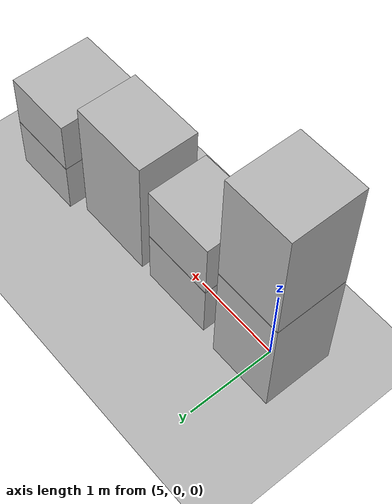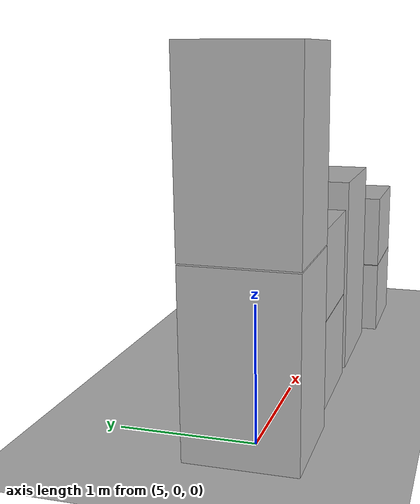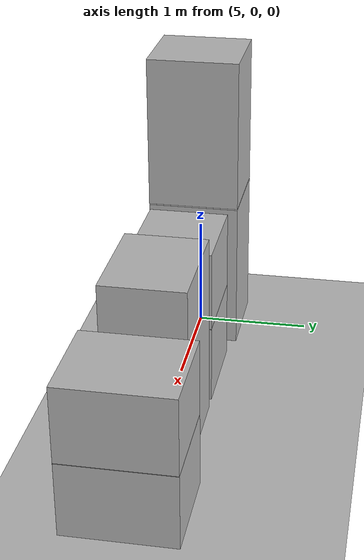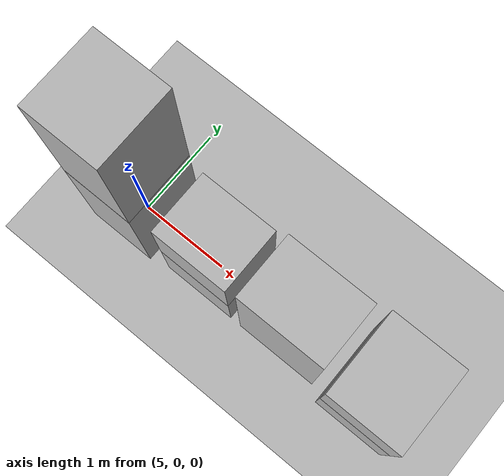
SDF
<sdf version="1.5">
 <world name="default">
  <model name="ground_plane">
   <static>true</static>
   <link name="link">
    <collision name="collision">
     <geometry><plane><normal>0 0 1</normal><size>250 250</size></plane></geometry>
     <surface><friction><ode><mu>1</mu><mu2>1</mu2></ode></friction></surface>
    </collision>
    <visual name="grass">
     <cast_shadows>false</cast_shadows>
     <geometry><mesh><uri>file://grass_plane/meshes/grass_plane.dae</uri></mesh></geometry>
    </visual>
   </link>
  </model>
  <model name="Cardboard_box_5">
   <link name="link_0">
    <pose>5 0 0 0 0 0</pose>
    <inertial>
     <mass>1</mass>
     <inertia>
      <ixx>0.166667</ixx>
      <ixy>0</ixy>
      <ixz>0</ixz>
      <iyy>0.166667</iyy>
      <iyz>0</iyz>
      <izz>0.166667</izz>
     </inertia>
    </inertial>
    <collision name="collision">
     <geometry>
      <mesh>
       <uri>model://Cardboard_box/meshes/cardboard_box.dae</uri>
       <scale>1.9122216337 2.01660778259 3.3676220587</scale>
      </mesh>
     </geometry>
    </collision>
    <visual name="visual">
     <geometry>
      <mesh>
       <uri>model://Cardboard_box/meshes/cardboard_box.dae</uri>
       <scale>1.9122216337 2.01660778259 3.3676220587</scale>
      </mesh>
     </geometry>
    </visual>
   </link>
   <static>1</static>
  </model>
  <model name="Cardboard_box_top_5">
   <link name="link_0">
    <pose>5 0 1.34704882348 0 0 0</pose>
    <inertial>
     <mass>1</mass>
     <inertia>
      <ixx>0.166667</ixx>
      <ixy>0</ixy>
      <ixz>0</ixz>
      <iyy>0.166667</iyy>
      <iyz>0</iyz>
      <izz>0.166667</izz>
     </inertia>
    </inertial>
    <collision name="collision">
     <geometry>
      <mesh>
       <uri>model://Cardboard_box/meshes/cardboard_box.dae</uri>
       <scale>1.9122216337 2.01660778259 3.3676220587</scale>
      </mesh>
     </geometry>
    </collision>
    <visual name="visual">
     <geometry>
      <mesh>
       <uri>model://Cardboard_box/meshes/cardboard_box.dae</uri>
       <scale>1.9122216337 2.01660778259 3.3676220587</scale>
      </mesh>
     </geometry>
    </visual>
   </link>
   <static>1</static>
  </model>
  <model name="Cardboard_box_6">
   <link name="link_0">
    <pose>6 0 0 0 0 0</pose>
    <inertial>
     <mass>1</mass>
     <inertia>
      <ixx>0.166667</ixx>
      <ixy>0</ixy>
      <ixz>0</ixz>
      <iyy>0.166667</iyy>
      <iyz>0</iyz>
      <izz>0.166667</izz>
     </inertia>
    </inertial>
    <collision name="collision">
     <geometry>
      <mesh>
       <uri>model://Cardboard_box/meshes/cardboard_box.dae</uri>
       <scale>2.07896184364 1.73842568687 1.73752886184</scale>
      </mesh>
     </geometry>
    </collision>
    <visual name="visual">
     <geometry>
      <mesh>
       <uri>model://Cardboard_box/meshes/cardboard_box.dae</uri>
       <scale>2.07896184364 1.73842568687 1.73752886184</scale>
      </mesh>
     </geometry>
    </visual>
   </link>
   <static>1</static>
  </model>
  <model name="Cardboard_box_top_6">
   <link name="link_0">
    <pose>6 0 0.695011544734 0 0 0</pose>
    <inertial>
     <mass>1</mass>
     <inertia>
      <ixx>0.166667</ixx>
      <ixy>0</ixy>
      <ixz>0</ixz>
      <iyy>0.166667</iyy>
      <iyz>0</iyz>
      <izz>0.166667</izz>
     </inertia>
    </inertial>
    <collision name="collision">
     <geometry>
      <mesh>
       <uri>model://Cardboard_box/meshes/cardboard_box.dae</uri>
       <scale>2.07896184364 1.73842568687 1.73752886184</scale>
      </mesh>
     </geometry>
    </collision>
    <visual name="visual">
     <geometry>
      <mesh>
       <uri>model://Cardboard_box/meshes/cardboard_box.dae</uri>
       <scale>2.07896184364 1.73842568687 1.73752886184</scale>
      </mesh>
     </geometry>
    </visual>
   </link>
   <static>1</static>
  </model>
  <model name="Cardboard_box_7">
   <link name="link_0">
    <pose>7 0 0 0 0 0</pose>
    <inertial>
     <mass>1</mass>
     <inertia>
      <ixx>0.166667</ixx>
      <ixy>0</ixy>
      <ixz>0</ixz>
      <iyy>0.166667</iyy>
      <iyz>0</iyz>
      <izz>0.166667</izz>
     </inertia>
    </inertial>
    <collision name="collision">
     <geometry>
      <mesh>
       <uri>model://Cardboard_box/meshes/cardboard_box.dae</uri>
       <scale>2.33061281254 1.74194674921 3.99890380432</scale>
      </mesh>
     </geometry>
    </collision>
    <visual name="visual">
     <geometry>
      <mesh>
       <uri>model://Cardboard_box/meshes/cardboard_box.dae</uri>
       <scale>2.33061281254 1.74194674921 3.99890380432</scale>
      </mesh>
     </geometry>
    </visual>
   </link>
   <static>1</static>
  </model>
  <model name="Cardboard_box_8">
   <link name="link_0">
    <pose>8 0 0 0 0 0</pose>
    <inertial>
     <mass>1</mass>
     <inertia>
      <ixx>0.166667</ixx>
      <ixy>0</ixy>
      <ixz>0</ixz>
      <iyy>0.166667</iyy>
      <iyz>0</iyz>
      <izz>0.166667</izz>
     </inertia>
    </inertial>
    <collision name="collision">
     <geometry>
      <mesh>
       <uri>model://Cardboard_box/meshes/cardboard_box.dae</uri>
       <scale>2.02162936327 2.31978093398 1.59844240151</scale>
      </mesh>
     </geometry>
    </collision>
    <visual name="visual">
     <geometry>
      <mesh>
       <uri>model://Cardboard_box/meshes/cardboard_box.dae</uri>
       <scale>2.02162936327 2.31978093398 1.59844240151</scale>
      </mesh>
     </geometry>
    </visual>
   </link>
   <static>1</static>
  </model>
  <model name="Cardboard_box_top_8">
   <link name="link_0">
    <pose>8 0 0.639376960603 0 0 0</pose>
    <inertial>
     <mass>1</mass>
     <inertia>
      <ixx>0.166667</ixx>
      <ixy>0</ixy>
      <ixz>0</ixz>
      <iyy>0.166667</iyy>
      <iyz>0</iyz>
      <izz>0.166667</izz>
     </inertia>
    </inertial>
    <collision name="collision">
     <geometry>
      <mesh>
       <uri>model://Cardboard_box/meshes/cardboard_box.dae</uri>
       <scale>2.02162936327 2.31978093398 1.59844240151</scale>
      </mesh>
     </geometry>
    </collision>
    <visual name="visual">
     <geometry>
      <mesh>
       <uri>model://Cardboard_box/meshes/cardboard_box.dae</uri>
       <scale>2.02162936327 2.31978093398 1.59844240151</scale>
      </mesh>
     </geometry>
    </visual>
   </link>
   <static>1</static>
  </model>
 </world>
</sdf>
